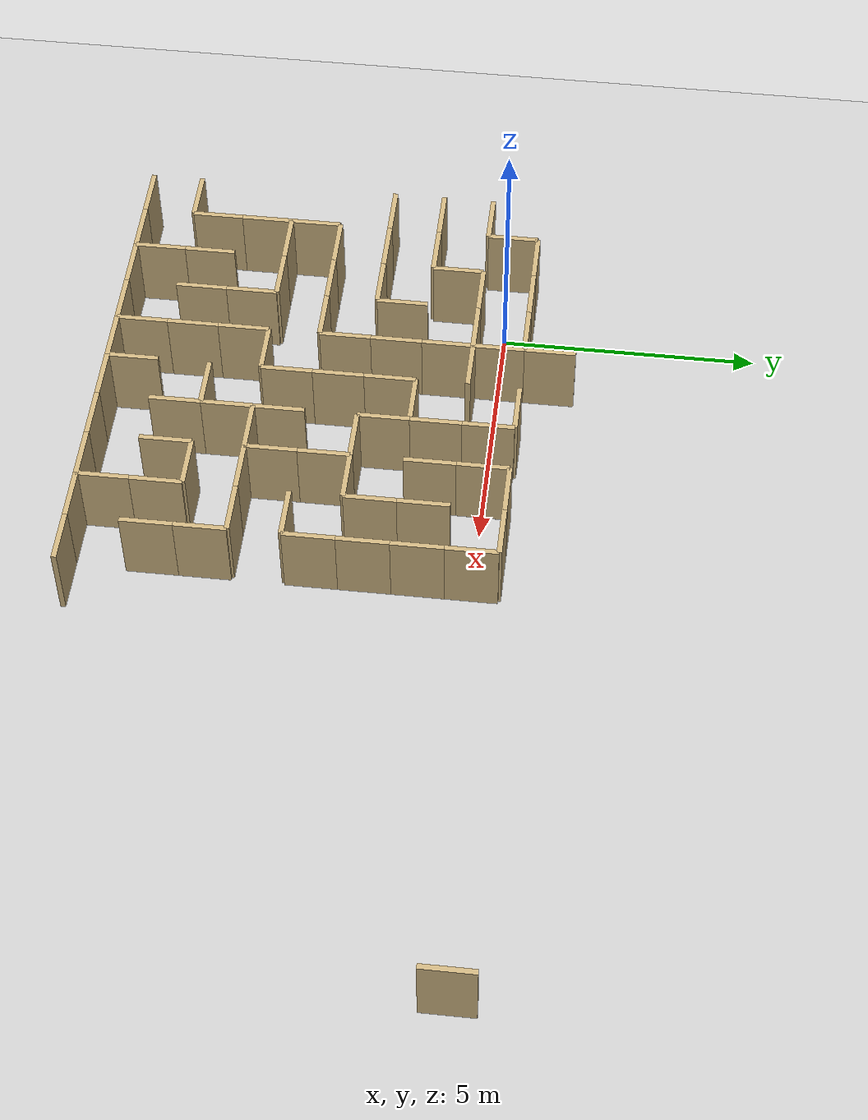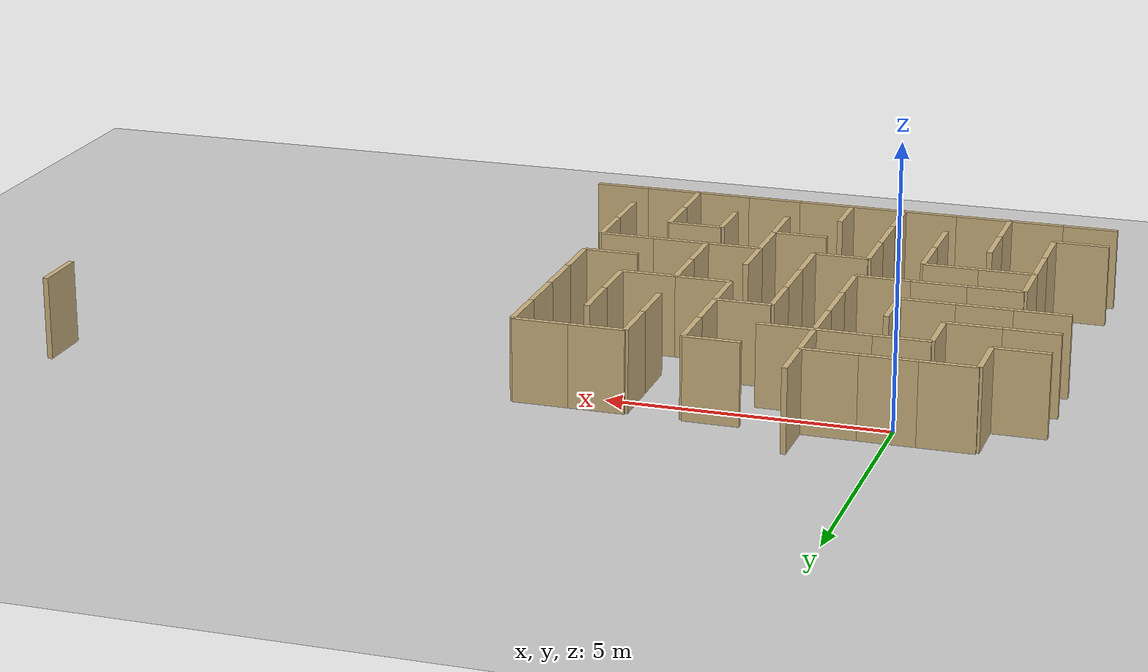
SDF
<sdf version="1.9">
 <world name="maze">
  <model name="ground_plane">
   <static>true</static>
   <link name="link">
    <collision name="collision">
     <geometry><plane><normal>0 0 1</normal><size>100 100</size></plane></geometry>
    </collision>
    <visual name="visual"><geometry><plane><normal>0 0 1</normal><size>100 100</size></plane></geometry></visual>
   </link>
  </model>
  <model name="wall_6">
   <static>true</static>
   <pose>-2.0 -7.5 0.75 0 0 0</pose>
   <link name="link">
    <collision name="collision"><geometry><box><size>1.0 0.1 1.5</size></box></geometry></collision>
    <visual name="visual">
     <geometry><box><size>1.0 0.1 1.5</size></box></geometry>
     <material>
      <ambient>0.8 0.7 0.5 1</ambient>
      <diffuse>0.8 0.7 0.5 1</diffuse>
      <specular>0.05 0.05 0.05 1</specular>
     </material>
    </visual>
   </link>
  </model>
  <model name="wall_7">
   <static>true</static>
   <pose>-1.0 -7.5 0.75 0 0 0</pose>
   <link name="link">
    <collision name="collision"><geometry><box><size>1.0 0.1 1.5</size></box></geometry></collision>
    <visual name="visual">
     <geometry><box><size>1.0 0.1 1.5</size></box></geometry>
     <material>
      <ambient>0.8 0.7 0.5 1</ambient>
      <diffuse>0.8 0.7 0.5 1</diffuse>
      <specular>0.05 0.05 0.05 1</specular>
     </material>
    </visual>
   </link>
  </model>
  <model name="wall_8">
   <static>true</static>
   <pose>0.0 -7.5 0.75 0 0 0</pose>
   <link name="link">
    <collision name="collision"><geometry><box><size>1.0 0.1 1.5</size></box></geometry></collision>
    <visual name="visual">
     <geometry><box><size>1.0 0.1 1.5</size></box></geometry>
     <material>
      <ambient>0.8 0.7 0.5 1</ambient>
      <diffuse>0.8 0.7 0.5 1</diffuse>
      <specular>0.05 0.05 0.05 1</specular>
     </material>
    </visual>
   </link>
  </model>
  <model name="wall_9">
   <static>true</static>
   <pose>-0.5 -7.0 0.75 0 0 0</pose>
   <link name="link">
    <collision name="collision"><geometry><box><size>0.1 1.0 1.5</size></box></geometry></collision>
    <visual name="visual">
     <geometry><box><size>0.1 1.0 1.5</size></box></geometry>
     <material>
      <ambient>0.8 0.7 0.5 1</ambient>
      <diffuse>0.8 0.7 0.5 1</diffuse>
      <specular>0.05 0.05 0.05 1</specular>
     </material>
    </visual>
   </link>
  </model>
  <model name="wall_10">
   <static>true</static>
   <pose>1.0 -7.5 0.75 0 0 0</pose>
   <link name="link">
    <collision name="collision"><geometry><box><size>1.0 0.1 1.5</size></box></geometry></collision>
    <visual name="visual">
     <geometry><box><size>1.0 0.1 1.5</size></box></geometry>
     <material>
      <ambient>0.8 0.7 0.5 1</ambient>
      <diffuse>0.8 0.7 0.5 1</diffuse>
      <specular>0.05 0.05 0.05 1</specular>
     </material>
    </visual>
   </link>
  </model>
  <model name="wall_11">
   <static>true</static>
   <pose>2.0 -7.5 0.75 0 0 0</pose>
   <link name="link">
    <collision name="collision"><geometry><box><size>1.0 0.1 1.5</size></box></geometry></collision>
    <visual name="visual">
     <geometry><box><size>1.0 0.1 1.5</size></box></geometry>
     <material>
      <ambient>0.8 0.7 0.5 1</ambient>
      <diffuse>0.8 0.7 0.5 1</diffuse>
      <specular>0.05 0.05 0.05 1</specular>
     </material>
    </visual>
   </link>
  </model>
  <model name="wall_12">
   <static>true</static>
   <pose>1.5 -7.0 0.75 0 0 0</pose>
   <link name="link">
    <collision name="collision"><geometry><box><size>0.1 1.0 1.5</size></box></geometry></collision>
    <visual name="visual">
     <geometry><box><size>0.1 1.0 1.5</size></box></geometry>
     <material>
      <ambient>0.8 0.7 0.5 1</ambient>
      <diffuse>0.8 0.7 0.5 1</diffuse>
      <specular>0.05 0.05 0.05 1</specular>
     </material>
    </visual>
   </link>
  </model>
  <model name="wall_13">
   <static>true</static>
   <pose>3.0 -7.5 0.75 0 0 0</pose>
   <link name="link">
    <collision name="collision"><geometry><box><size>1.0 0.1 1.5</size></box></geometry></collision>
    <visual name="visual">
     <geometry><box><size>1.0 0.1 1.5</size></box></geometry>
     <material>
      <ambient>0.8 0.7 0.5 1</ambient>
      <diffuse>0.8 0.7 0.5 1</diffuse>
      <specular>0.05 0.05 0.05 1</specular>
     </material>
    </visual>
   </link>
  </model>
  <model name="wall_14">
   <static>true</static>
   <pose>2.5 -7.0 0.75 0 0 0</pose>
   <link name="link">
    <collision name="collision"><geometry><box><size>0.1 1.0 1.5</size></box></geometry></collision>
    <visual name="visual">
     <geometry><box><size>0.1 1.0 1.5</size></box></geometry>
     <material>
      <ambient>0.8 0.7 0.5 1</ambient>
      <diffuse>0.8 0.7 0.5 1</diffuse>
      <specular>0.05 0.05 0.05 1</specular>
     </material>
    </visual>
   </link>
  </model>
  <model name="wall_15">
   <static>true</static>
   <pose>4.0 -7.5 0.75 0 0 0</pose>
   <link name="link">
    <collision name="collision"><geometry><box><size>1.0 0.1 1.5</size></box></geometry></collision>
    <visual name="visual">
     <geometry><box><size>1.0 0.1 1.5</size></box></geometry>
     <material>
      <ambient>0.8 0.7 0.5 1</ambient>
      <diffuse>0.8 0.7 0.5 1</diffuse>
      <specular>0.05 0.05 0.05 1</specular>
     </material>
    </visual>
   </link>
  </model>
  <model name="wall_16">
   <static>true</static>
   <pose>5.0 -7.5 0.75 0 0 0</pose>
   <link name="link">
    <collision name="collision"><geometry><box><size>1.0 0.1 1.5</size></box></geometry></collision>
    <visual name="visual">
     <geometry><box><size>1.0 0.1 1.5</size></box></geometry>
     <material>
      <ambient>0.8 0.7 0.5 1</ambient>
      <diffuse>0.8 0.7 0.5 1</diffuse>
      <specular>0.05 0.05 0.05 1</specular>
     </material>
    </visual>
   </link>
  </model>
  <model name="wall_17">
   <static>true</static>
   <pose>6.0 -7.5 0.75 0 0 0</pose>
   <link name="link">
    <collision name="collision"><geometry><box><size>1.0 0.1 1.5</size></box></geometry></collision>
    <visual name="visual">
     <geometry><box><size>1.0 0.1 1.5</size></box></geometry>
     <material>
      <ambient>0.8 0.7 0.5 1</ambient>
      <diffuse>0.8 0.7 0.5 1</diffuse>
      <specular>0.05 0.05 0.05 1</specular>
     </material>
    </visual>
   </link>
  </model>
  <model name="wall_18">
   <static>true</static>
   <pose>5.5 -7.0 0.75 0 0 0</pose>
   <link name="link">
    <collision name="collision"><geometry><box><size>0.1 1.0 1.5</size></box></geometry></collision>
    <visual name="visual">
     <geometry><box><size>0.1 1.0 1.5</size></box></geometry>
     <material>
      <ambient>0.8 0.7 0.5 1</ambient>
      <diffuse>0.8 0.7 0.5 1</diffuse>
      <specular>0.05 0.05 0.05 1</specular>
     </material>
    </visual>
   </link>
  </model>
  <model name="wall_19">
   <static>true</static>
   <pose>7.0 -7.5 0.75 0 0 0</pose>
   <link name="link">
    <collision name="collision"><geometry><box><size>1.0 0.1 1.5</size></box></geometry></collision>
    <visual name="visual">
     <geometry><box><size>1.0 0.1 1.5</size></box></geometry>
     <material>
      <ambient>0.8 0.7 0.5 1</ambient>
      <diffuse>0.8 0.7 0.5 1</diffuse>
      <specular>0.05 0.05 0.05 1</specular>
     </material>
    </visual>
   </link>
  </model>
  <model name="wall_26">
   <static>true</static>
   <pose>-2.0 -6.5 0.75 0 0 0</pose>
   <link name="link">
    <collision name="collision"><geometry><box><size>1.0 0.1 1.5</size></box></geometry></collision>
    <visual name="visual">
     <geometry><box><size>1.0 0.1 1.5</size></box></geometry>
     <material>
      <ambient>0.8 0.7 0.5 1</ambient>
      <diffuse>0.8 0.7 0.5 1</diffuse>
      <specular>0.05 0.05 0.05 1</specular>
     </material>
    </visual>
   </link>
  </model>
  <model name="wall_27">
   <static>true</static>
   <pose>-1.5 -6.0 0.75 0 0 0</pose>
   <link name="link">
    <collision name="collision"><geometry><box><size>0.1 1.0 1.5</size></box></geometry></collision>
    <visual name="visual">
     <geometry><box><size>0.1 1.0 1.5</size></box></geometry>
     <material>
      <ambient>0.8 0.7 0.5 1</ambient>
      <diffuse>0.8 0.7 0.5 1</diffuse>
      <specular>0.05 0.05 0.05 1</specular>
     </material>
    </visual>
   </link>
  </model>
  <model name="wall_28">
   <static>true</static>
   <pose>-0.5 -6.0 0.75 0 0 0</pose>
   <link name="link">
    <collision name="collision"><geometry><box><size>0.1 1.0 1.5</size></box></geometry></collision>
    <visual name="visual">
     <geometry><box><size>0.1 1.0 1.5</size></box></geometry>
     <material>
      <ambient>0.8 0.7 0.5 1</ambient>
      <diffuse>0.8 0.7 0.5 1</diffuse>
      <specular>0.05 0.05 0.05 1</specular>
     </material>
    </visual>
   </link>
  </model>
  <model name="wall_29">
   <static>true</static>
   <pose>0.5 -6.0 0.75 0 0 0</pose>
   <link name="link">
    <collision name="collision"><geometry><box><size>0.1 1.0 1.5</size></box></geometry></collision>
    <visual name="visual">
     <geometry><box><size>0.1 1.0 1.5</size></box></geometry>
     <material>
      <ambient>0.8 0.7 0.5 1</ambient>
      <diffuse>0.8 0.7 0.5 1</diffuse>
      <specular>0.05 0.05 0.05 1</specular>
     </material>
    </visual>
   </link>
  </model>
  <model name="wall_30">
   <static>true</static>
   <pose>1.5 -6.0 0.75 0 0 0</pose>
   <link name="link">
    <collision name="collision"><geometry><box><size>0.1 1.0 1.5</size></box></geometry></collision>
    <visual name="visual">
     <geometry><box><size>0.1 1.0 1.5</size></box></geometry>
     <material>
      <ambient>0.8 0.7 0.5 1</ambient>
      <diffuse>0.8 0.7 0.5 1</diffuse>
      <specular>0.05 0.05 0.05 1</specular>
     </material>
    </visual>
   </link>
  </model>
  <model name="wall_31">
   <static>true</static>
   <pose>3.5 -6.0 0.75 0 0 0</pose>
   <link name="link">
    <collision name="collision"><geometry><box><size>0.1 1.0 1.5</size></box></geometry></collision>
    <visual name="visual">
     <geometry><box><size>0.1 1.0 1.5</size></box></geometry>
     <material>
      <ambient>0.8 0.7 0.5 1</ambient>
      <diffuse>0.8 0.7 0.5 1</diffuse>
      <specular>0.05 0.05 0.05 1</specular>
     </material>
    </visual>
   </link>
  </model>
  <model name="wall_32">
   <static>true</static>
   <pose>4.5 -6.0 0.75 0 0 0</pose>
   <link name="link">
    <collision name="collision"><geometry><box><size>0.1 1.0 1.5</size></box></geometry></collision>
    <visual name="visual">
     <geometry><box><size>0.1 1.0 1.5</size></box></geometry>
     <material>
      <ambient>0.8 0.7 0.5 1</ambient>
      <diffuse>0.8 0.7 0.5 1</diffuse>
      <specular>0.05 0.05 0.05 1</specular>
     </material>
    </visual>
   </link>
  </model>
  <model name="wall_33">
   <static>true</static>
   <pose>5.5 -6.0 0.75 0 0 0</pose>
   <link name="link">
    <collision name="collision"><geometry><box><size>0.1 1.0 1.5</size></box></geometry></collision>
    <visual name="visual">
     <geometry><box><size>0.1 1.0 1.5</size></box></geometry>
     <material>
      <ambient>0.8 0.7 0.5 1</ambient>
      <diffuse>0.8 0.7 0.5 1</diffuse>
      <specular>0.05 0.05 0.05 1</specular>
     </material>
    </visual>
   </link>
  </model>
  <model name="wall_34">
   <static>true</static>
   <pose>6.5 -6.0 0.75 0 0 0</pose>
   <link name="link">
    <collision name="collision"><geometry><box><size>0.1 1.0 1.5</size></box></geometry></collision>
    <visual name="visual">
     <geometry><box><size>0.1 1.0 1.5</size></box></geometry>
     <material>
      <ambient>0.8 0.7 0.5 1</ambient>
      <diffuse>0.8 0.7 0.5 1</diffuse>
      <specular>0.05 0.05 0.05 1</specular>
     </material>
    </visual>
   </link>
  </model>
  <model name="wall_41">
   <static>true</static>
   <pose>-1.5 -5.0 0.75 0 0 0</pose>
   <link name="link">
    <collision name="collision"><geometry><box><size>0.1 1.0 1.5</size></box></geometry></collision>
    <visual name="visual">
     <geometry><box><size>0.1 1.0 1.5</size></box></geometry>
     <material>
      <ambient>0.8 0.7 0.5 1</ambient>
      <diffuse>0.8 0.7 0.5 1</diffuse>
      <specular>0.05 0.05 0.05 1</specular>
     </material>
    </visual>
   </link>
  </model>
  <model name="wall_42">
   <static>true</static>
   <pose>0.5 -5.0 0.75 0 0 0</pose>
   <link name="link">
    <collision name="collision"><geometry><box><size>0.1 1.0 1.5</size></box></geometry></collision>
    <visual name="visual">
     <geometry><box><size>0.1 1.0 1.5</size></box></geometry>
     <material>
      <ambient>0.8 0.7 0.5 1</ambient>
      <diffuse>0.8 0.7 0.5 1</diffuse>
      <specular>0.05 0.05 0.05 1</specular>
     </material>
    </visual>
   </link>
  </model>
  <model name="wall_43">
   <static>true</static>
   <pose>1.5 -5.0 0.75 0 0 0</pose>
   <link name="link">
    <collision name="collision"><geometry><box><size>0.1 1.0 1.5</size></box></geometry></collision>
    <visual name="visual">
     <geometry><box><size>0.1 1.0 1.5</size></box></geometry>
     <material>
      <ambient>0.8 0.7 0.5 1</ambient>
      <diffuse>0.8 0.7 0.5 1</diffuse>
      <specular>0.05 0.05 0.05 1</specular>
     </material>
    </visual>
   </link>
  </model>
  <model name="wall_44">
   <static>true</static>
   <pose>3.0 -5.5 0.75 0 0 0</pose>
   <link name="link">
    <collision name="collision"><geometry><box><size>1.0 0.1 1.5</size></box></geometry></collision>
    <visual name="visual">
     <geometry><box><size>1.0 0.1 1.5</size></box></geometry>
     <material>
      <ambient>0.8 0.7 0.5 1</ambient>
      <diffuse>0.8 0.7 0.5 1</diffuse>
      <specular>0.05 0.05 0.05 1</specular>
     </material>
    </visual>
   </link>
  </model>
  <model name="wall_45">
   <static>true</static>
   <pose>3.5 -5.0 0.75 0 0 0</pose>
   <link name="link">
    <collision name="collision"><geometry><box><size>0.1 1.0 1.5</size></box></geometry></collision>
    <visual name="visual">
     <geometry><box><size>0.1 1.0 1.5</size></box></geometry>
     <material>
      <ambient>0.8 0.7 0.5 1</ambient>
      <diffuse>0.8 0.7 0.5 1</diffuse>
      <specular>0.05 0.05 0.05 1</specular>
     </material>
    </visual>
   </link>
  </model>
  <model name="wall_46">
   <static>true</static>
   <pose>5.0 -5.5 0.75 0 0 0</pose>
   <link name="link">
    <collision name="collision"><geometry><box><size>1.0 0.1 1.5</size></box></geometry></collision>
    <visual name="visual">
     <geometry><box><size>1.0 0.1 1.5</size></box></geometry>
     <material>
      <ambient>0.8 0.7 0.5 1</ambient>
      <diffuse>0.8 0.7 0.5 1</diffuse>
      <specular>0.05 0.05 0.05 1</specular>
     </material>
    </visual>
   </link>
  </model>
  <model name="wall_47">
   <static>true</static>
   <pose>6.5 -5.0 0.75 0 0 0</pose>
   <link name="link">
    <collision name="collision"><geometry><box><size>0.1 1.0 1.5</size></box></geometry></collision>
    <visual name="visual">
     <geometry><box><size>0.1 1.0 1.5</size></box></geometry>
     <material>
      <ambient>0.8 0.7 0.5 1</ambient>
      <diffuse>0.8 0.7 0.5 1</diffuse>
      <specular>0.05 0.05 0.05 1</specular>
     </material>
    </visual>
   </link>
  </model>
  <model name="wall_54">
   <static>true</static>
   <pose>-1.0 -4.5 0.75 0 0 0</pose>
   <link name="link">
    <collision name="collision"><geometry><box><size>1.0 0.1 1.5</size></box></geometry></collision>
    <visual name="visual">
     <geometry><box><size>1.0 0.1 1.5</size></box></geometry>
     <material>
      <ambient>0.8 0.7 0.5 1</ambient>
      <diffuse>0.8 0.7 0.5 1</diffuse>
      <specular>0.05 0.05 0.05 1</specular>
     </material>
    </visual>
   </link>
  </model>
  <model name="wall_55">
   <static>true</static>
   <pose>-1.5 -4.0 0.75 0 0 0</pose>
   <link name="link">
    <collision name="collision"><geometry><box><size>0.1 1.0 1.5</size></box></geometry></collision>
    <visual name="visual">
     <geometry><box><size>0.1 1.0 1.5</size></box></geometry>
     <material>
      <ambient>0.8 0.7 0.5 1</ambient>
      <diffuse>0.8 0.7 0.5 1</diffuse>
      <specular>0.05 0.05 0.05 1</specular>
     </material>
    </visual>
   </link>
  </model>
  <model name="wall_56">
   <static>true</static>
   <pose>0.0 -4.5 0.75 0 0 0</pose>
   <link name="link">
    <collision name="collision"><geometry><box><size>1.0 0.1 1.5</size></box></geometry></collision>
    <visual name="visual">
     <geometry><box><size>1.0 0.1 1.5</size></box></geometry>
     <material>
      <ambient>0.8 0.7 0.5 1</ambient>
      <diffuse>0.8 0.7 0.5 1</diffuse>
      <specular>0.05 0.05 0.05 1</specular>
     </material>
    </visual>
   </link>
  </model>
  <model name="wall_57">
   <static>true</static>
   <pose>2.0 -4.5 0.75 0 0 0</pose>
   <link name="link">
    <collision name="collision"><geometry><box><size>1.0 0.1 1.5</size></box></geometry></collision>
    <visual name="visual">
     <geometry><box><size>1.0 0.1 1.5</size></box></geometry>
     <material>
      <ambient>0.8 0.7 0.5 1</ambient>
      <diffuse>0.8 0.7 0.5 1</diffuse>
      <specular>0.05 0.05 0.05 1</specular>
     </material>
    </visual>
   </link>
  </model>
  <model name="wall_58">
   <static>true</static>
   <pose>2.5 -4.0 0.75 0 0 0</pose>
   <link name="link">
    <collision name="collision"><geometry><box><size>0.1 1.0 1.5</size></box></geometry></collision>
    <visual name="visual">
     <geometry><box><size>0.1 1.0 1.5</size></box></geometry>
     <material>
      <ambient>0.8 0.7 0.5 1</ambient>
      <diffuse>0.8 0.7 0.5 1</diffuse>
      <specular>0.05 0.05 0.05 1</specular>
     </material>
    </visual>
   </link>
  </model>
  <model name="wall_59">
   <static>true</static>
   <pose>4.0 -4.5 0.75 0 0 0</pose>
   <link name="link">
    <collision name="collision"><geometry><box><size>1.0 0.1 1.5</size></box></geometry></collision>
    <visual name="visual">
     <geometry><box><size>1.0 0.1 1.5</size></box></geometry>
     <material>
      <ambient>0.8 0.7 0.5 1</ambient>
      <diffuse>0.8 0.7 0.5 1</diffuse>
      <specular>0.05 0.05 0.05 1</specular>
     </material>
    </visual>
   </link>
  </model>
  <model name="wall_60">
   <static>true</static>
   <pose>3.5 -4.0 0.75 0 0 0</pose>
   <link name="link">
    <collision name="collision"><geometry><box><size>0.1 1.0 1.5</size></box></geometry></collision>
    <visual name="visual">
     <geometry><box><size>0.1 1.0 1.5</size></box></geometry>
     <material>
      <ambient>0.8 0.7 0.5 1</ambient>
      <diffuse>0.8 0.7 0.5 1</diffuse>
      <specular>0.05 0.05 0.05 1</specular>
     </material>
    </visual>
   </link>
  </model>
  <model name="wall_61">
   <static>true</static>
   <pose>5.0 -4.5 0.75 0 0 0</pose>
   <link name="link">
    <collision name="collision"><geometry><box><size>1.0 0.1 1.5</size></box></geometry></collision>
    <visual name="visual">
     <geometry><box><size>1.0 0.1 1.5</size></box></geometry>
     <material>
      <ambient>0.8 0.7 0.5 1</ambient>
      <diffuse>0.8 0.7 0.5 1</diffuse>
      <specular>0.05 0.05 0.05 1</specular>
     </material>
    </visual>
   </link>
  </model>
  <model name="wall_62">
   <static>true</static>
   <pose>4.5 -4.0 0.75 0 0 0</pose>
   <link name="link">
    <collision name="collision"><geometry><box><size>0.1 1.0 1.5</size></box></geometry></collision>
    <visual name="visual">
     <geometry><box><size>0.1 1.0 1.5</size></box></geometry>
     <material>
      <ambient>0.8 0.7 0.5 1</ambient>
      <diffuse>0.8 0.7 0.5 1</diffuse>
      <specular>0.05 0.05 0.05 1</specular>
     </material>
    </visual>
   </link>
  </model>
  <model name="wall_63">
   <static>true</static>
   <pose>6.0 -4.5 0.75 0 0 0</pose>
   <link name="link">
    <collision name="collision"><geometry><box><size>1.0 0.1 1.5</size></box></geometry></collision>
    <visual name="visual">
     <geometry><box><size>1.0 0.1 1.5</size></box></geometry>
     <material>
      <ambient>0.8 0.7 0.5 1</ambient>
      <diffuse>0.8 0.7 0.5 1</diffuse>
      <specular>0.05 0.05 0.05 1</specular>
     </material>
    </visual>
   </link>
  </model>
  <model name="wall_70">
   <static>true</static>
   <pose>-1.0 -3.5 0.75 0 0 0</pose>
   <link name="link">
    <collision name="collision"><geometry><box><size>1.0 0.1 1.5</size></box></geometry></collision>
    <visual name="visual">
     <geometry><box><size>1.0 0.1 1.5</size></box></geometry>
     <material>
      <ambient>0.8 0.7 0.5 1</ambient>
      <diffuse>0.8 0.7 0.5 1</diffuse>
      <specular>0.05 0.05 0.05 1</specular>
     </material>
    </visual>
   </link>
  </model>
  <model name="wall_71">
   <static>true</static>
   <pose>0.0 -3.5 0.75 0 0 0</pose>
   <link name="link">
    <collision name="collision"><geometry><box><size>1.0 0.1 1.5</size></box></geometry></collision>
    <visual name="visual">
     <geometry><box><size>1.0 0.1 1.5</size></box></geometry>
     <material>
      <ambient>0.8 0.7 0.5 1</ambient>
      <diffuse>0.8 0.7 0.5 1</diffuse>
      <specular>0.05 0.05 0.05 1</specular>
     </material>
    </visual>
   </link>
  </model>
  <model name="wall_72">
   <static>true</static>
   <pose>1.0 -3.5 0.75 0 0 0</pose>
   <link name="link">
    <collision name="collision"><geometry><box><size>1.0 0.1 1.5</size></box></geometry></collision>
    <visual name="visual">
     <geometry><box><size>1.0 0.1 1.5</size></box></geometry>
     <material>
      <ambient>0.8 0.7 0.5 1</ambient>
      <diffuse>0.8 0.7 0.5 1</diffuse>
      <specular>0.05 0.05 0.05 1</specular>
     </material>
    </visual>
   </link>
  </model>
  <model name="wall_73">
   <static>true</static>
   <pose>1.5 -3.0 0.75 0 0 0</pose>
   <link name="link">
    <collision name="collision"><geometry><box><size>0.1 1.0 1.5</size></box></geometry></collision>
    <visual name="visual">
     <geometry><box><size>0.1 1.0 1.5</size></box></geometry>
     <material>
      <ambient>0.8 0.7 0.5 1</ambient>
      <diffuse>0.8 0.7 0.5 1</diffuse>
      <specular>0.05 0.05 0.05 1</specular>
     </material>
    </visual>
   </link>
  </model>
  <model name="wall_74">
   <static>true</static>
   <pose>2.5 -3.0 0.75 0 0 0</pose>
   <link name="link">
    <collision name="collision"><geometry><box><size>0.1 1.0 1.5</size></box></geometry></collision>
    <visual name="visual">
     <geometry><box><size>0.1 1.0 1.5</size></box></geometry>
     <material>
      <ambient>0.8 0.7 0.5 1</ambient>
      <diffuse>0.8 0.7 0.5 1</diffuse>
      <specular>0.05 0.05 0.05 1</specular>
     </material>
    </visual>
   </link>
  </model>
  <model name="wall_75">
   <static>true</static>
   <pose>4.5 -3.0 0.75 0 0 0</pose>
   <link name="link">
    <collision name="collision"><geometry><box><size>0.1 1.0 1.5</size></box></geometry></collision>
    <visual name="visual">
     <geometry><box><size>0.1 1.0 1.5</size></box></geometry>
     <material>
      <ambient>0.8 0.7 0.5 1</ambient>
      <diffuse>0.8 0.7 0.5 1</diffuse>
      <specular>0.05 0.05 0.05 1</specular>
     </material>
    </visual>
   </link>
  </model>
  <model name="wall_76">
   <static>true</static>
   <pose>6.0 -3.5 0.75 0 0 0</pose>
   <link name="link">
    <collision name="collision"><geometry><box><size>1.0 0.1 1.5</size></box></geometry></collision>
    <visual name="visual">
     <geometry><box><size>1.0 0.1 1.5</size></box></geometry>
     <material>
      <ambient>0.8 0.7 0.5 1</ambient>
      <diffuse>0.8 0.7 0.5 1</diffuse>
      <specular>0.05 0.05 0.05 1</specular>
     </material>
    </visual>
   </link>
  </model>
  <model name="wall_77">
   <static>true</static>
   <pose>6.5 -3.0 0.75 0 0 0</pose>
   <link name="link">
    <collision name="collision"><geometry><box><size>0.1 1.0 1.5</size></box></geometry></collision>
    <visual name="visual">
     <geometry><box><size>0.1 1.0 1.5</size></box></geometry>
     <material>
      <ambient>0.8 0.7 0.5 1</ambient>
      <diffuse>0.8 0.7 0.5 1</diffuse>
      <specular>0.05 0.05 0.05 1</specular>
     </material>
    </visual>
   </link>
  </model>
  <model name="wall_83">
   <static>true</static>
   <pose>-2.0 -2.5 0.75 0 0 0</pose>
   <link name="link">
    <collision name="collision"><geometry><box><size>1.0 0.1 1.5</size></box></geometry></collision>
    <visual name="visual">
     <geometry><box><size>1.0 0.1 1.5</size></box></geometry>
     <material>
      <ambient>0.8 0.7 0.5 1</ambient>
      <diffuse>0.8 0.7 0.5 1</diffuse>
      <specular>0.05 0.05 0.05 1</specular>
     </material>
    </visual>
   </link>
  </model>
  <model name="wall_84">
   <static>true</static>
   <pose>-1.0 -2.5 0.75 0 0 0</pose>
   <link name="link">
    <collision name="collision"><geometry><box><size>1.0 0.1 1.5</size></box></geometry></collision>
    <visual name="visual">
     <geometry><box><size>1.0 0.1 1.5</size></box></geometry>
     <material>
      <ambient>0.8 0.7 0.5 1</ambient>
      <diffuse>0.8 0.7 0.5 1</diffuse>
      <specular>0.05 0.05 0.05 1</specular>
     </material>
    </visual>
   </link>
  </model>
  <model name="wall_85">
   <static>true</static>
   <pose>0.0 -2.5 0.75 0 0 0</pose>
   <link name="link">
    <collision name="collision"><geometry><box><size>1.0 0.1 1.5</size></box></geometry></collision>
    <visual name="visual">
     <geometry><box><size>1.0 0.1 1.5</size></box></geometry>
     <material>
      <ambient>0.8 0.7 0.5 1</ambient>
      <diffuse>0.8 0.7 0.5 1</diffuse>
      <specular>0.05 0.05 0.05 1</specular>
     </material>
    </visual>
   </link>
  </model>
  <model name="wall_86">
   <static>true</static>
   <pose>0.5 -2.0 0.75 0 0 0</pose>
   <link name="link">
    <collision name="collision"><geometry><box><size>0.1 1.0 1.5</size></box></geometry></collision>
    <visual name="visual">
     <geometry><box><size>0.1 1.0 1.5</size></box></geometry>
     <material>
      <ambient>0.8 0.7 0.5 1</ambient>
      <diffuse>0.8 0.7 0.5 1</diffuse>
      <specular>0.05 0.05 0.05 1</specular>
     </material>
    </visual>
   </link>
  </model>
  <model name="wall_87">
   <static>true</static>
   <pose>1.5 -2.0 0.75 0 0 0</pose>
   <link name="link">
    <collision name="collision"><geometry><box><size>0.1 1.0 1.5</size></box></geometry></collision>
    <visual name="visual">
     <geometry><box><size>0.1 1.0 1.5</size></box></geometry>
     <material>
      <ambient>0.8 0.7 0.5 1</ambient>
      <diffuse>0.8 0.7 0.5 1</diffuse>
      <specular>0.05 0.05 0.05 1</specular>
     </material>
    </visual>
   </link>
  </model>
  <model name="wall_88">
   <static>true</static>
   <pose>2.5 -2.0 0.75 0 0 0</pose>
   <link name="link">
    <collision name="collision"><geometry><box><size>0.1 1.0 1.5</size></box></geometry></collision>
    <visual name="visual">
     <geometry><box><size>0.1 1.0 1.5</size></box></geometry>
     <material>
      <ambient>0.8 0.7 0.5 1</ambient>
      <diffuse>0.8 0.7 0.5 1</diffuse>
      <specular>0.05 0.05 0.05 1</specular>
     </material>
    </visual>
   </link>
  </model>
  <model name="wall_89">
   <static>true</static>
   <pose>4.0 -2.5 0.75 0 0 0</pose>
   <link name="link">
    <collision name="collision"><geometry><box><size>1.0 0.1 1.5</size></box></geometry></collision>
    <visual name="visual">
     <geometry><box><size>1.0 0.1 1.5</size></box></geometry>
     <material>
      <ambient>0.8 0.7 0.5 1</ambient>
      <diffuse>0.8 0.7 0.5 1</diffuse>
      <specular>0.05 0.05 0.05 1</specular>
     </material>
    </visual>
   </link>
  </model>
  <model name="wall_90">
   <static>true</static>
   <pose>3.5 -2.0 0.75 0 0 0</pose>
   <link name="link">
    <collision name="collision"><geometry><box><size>0.1 1.0 1.5</size></box></geometry></collision>
    <visual name="visual">
     <geometry><box><size>0.1 1.0 1.5</size></box></geometry>
     <material>
      <ambient>0.8 0.7 0.5 1</ambient>
      <diffuse>0.8 0.7 0.5 1</diffuse>
      <specular>0.05 0.05 0.05 1</specular>
     </material>
    </visual>
   </link>
  </model>
  <model name="wall_91">
   <static>true</static>
   <pose>5.0 -2.5 0.75 0 0 0</pose>
   <link name="link">
    <collision name="collision"><geometry><box><size>1.0 0.1 1.5</size></box></geometry></collision>
    <visual name="visual">
     <geometry><box><size>1.0 0.1 1.5</size></box></geometry>
     <material>
      <ambient>0.8 0.7 0.5 1</ambient>
      <diffuse>0.8 0.7 0.5 1</diffuse>
      <specular>0.05 0.05 0.05 1</specular>
     </material>
    </visual>
   </link>
  </model>
  <model name="wall_92">
   <static>true</static>
   <pose>5.5 -2.0 0.75 0 0 0</pose>
   <link name="link">
    <collision name="collision"><geometry><box><size>0.1 1.0 1.5</size></box></geometry></collision>
    <visual name="visual">
     <geometry><box><size>0.1 1.0 1.5</size></box></geometry>
     <material>
      <ambient>0.8 0.7 0.5 1</ambient>
      <diffuse>0.8 0.7 0.5 1</diffuse>
      <specular>0.05 0.05 0.05 1</specular>
     </material>
    </visual>
   </link>
  </model>
  <model name="wall_93">
   <static>true</static>
   <pose>6.5 -2.0 0.75 0 0 0</pose>
   <link name="link">
    <collision name="collision"><geometry><box><size>0.1 1.0 1.5</size></box></geometry></collision>
    <visual name="visual">
     <geometry><box><size>0.1 1.0 1.5</size></box></geometry>
     <material>
      <ambient>0.8 0.7 0.5 1</ambient>
      <diffuse>0.8 0.7 0.5 1</diffuse>
      <specular>0.05 0.05 0.05 1</specular>
     </material>
    </visual>
   </link>
  </model>
  <model name="wall_99">
   <static>true</static>
   <pose>-2.0 -1.5 0.75 0 0 0</pose>
   <link name="link">
    <collision name="collision"><geometry><box><size>1.0 0.1 1.5</size></box></geometry></collision>
    <visual name="visual">
     <geometry><box><size>1.0 0.1 1.5</size></box></geometry>
     <material>
      <ambient>0.8 0.7 0.5 1</ambient>
      <diffuse>0.8 0.7 0.5 1</diffuse>
      <specular>0.05 0.05 0.05 1</specular>
     </material>
    </visual>
   </link>
  </model>
  <model name="wall_100">
   <static>true</static>
   <pose>-1.0 -1.5 0.75 0 0 0</pose>
   <link name="link">
    <collision name="collision"><geometry><box><size>1.0 0.1 1.5</size></box></geometry></collision>
    <visual name="visual">
     <geometry><box><size>1.0 0.1 1.5</size></box></geometry>
     <material>
      <ambient>0.8 0.7 0.5 1</ambient>
      <diffuse>0.8 0.7 0.5 1</diffuse>
      <specular>0.05 0.05 0.05 1</specular>
     </material>
    </visual>
   </link>
  </model>
  <model name="wall_101">
   <static>true</static>
   <pose>-0.5 -1.0 0.75 0 0 0</pose>
   <link name="link">
    <collision name="collision"><geometry><box><size>0.1 1.0 1.5</size></box></geometry></collision>
    <visual name="visual">
     <geometry><box><size>0.1 1.0 1.5</size></box></geometry>
     <material>
      <ambient>0.8 0.7 0.5 1</ambient>
      <diffuse>0.8 0.7 0.5 1</diffuse>
      <specular>0.05 0.05 0.05 1</specular>
     </material>
    </visual>
   </link>
  </model>
  <model name="wall_102">
   <static>true</static>
   <pose>1.5 -1.0 0.75 0 0 0</pose>
   <link name="link">
    <collision name="collision"><geometry><box><size>0.1 1.0 1.5</size></box></geometry></collision>
    <visual name="visual">
     <geometry><box><size>0.1 1.0 1.5</size></box></geometry>
     <material>
      <ambient>0.8 0.7 0.5 1</ambient>
      <diffuse>0.8 0.7 0.5 1</diffuse>
      <specular>0.05 0.05 0.05 1</specular>
     </material>
    </visual>
   </link>
  </model>
  <model name="wall_103">
   <static>true</static>
   <pose>3.0 -1.5 0.75 0 0 0</pose>
   <link name="link">
    <collision name="collision"><geometry><box><size>1.0 0.1 1.5</size></box></geometry></collision>
    <visual name="visual">
     <geometry><box><size>1.0 0.1 1.5</size></box></geometry>
     <material>
      <ambient>0.8 0.7 0.5 1</ambient>
      <diffuse>0.8 0.7 0.5 1</diffuse>
      <specular>0.05 0.05 0.05 1</specular>
     </material>
    </visual>
   </link>
  </model>
  <model name="wall_104">
   <static>true</static>
   <pose>3.5 -1.0 0.75 0 0 0</pose>
   <link name="link">
    <collision name="collision"><geometry><box><size>0.1 1.0 1.5</size></box></geometry></collision>
    <visual name="visual">
     <geometry><box><size>0.1 1.0 1.5</size></box></geometry>
     <material>
      <ambient>0.8 0.7 0.5 1</ambient>
      <diffuse>0.8 0.7 0.5 1</diffuse>
      <specular>0.05 0.05 0.05 1</specular>
     </material>
    </visual>
   </link>
  </model>
  <model name="wall_105">
   <static>true</static>
   <pose>4.5 -1.0 0.75 0 0 0</pose>
   <link name="link">
    <collision name="collision"><geometry><box><size>0.1 1.0 1.5</size></box></geometry></collision>
    <visual name="visual">
     <geometry><box><size>0.1 1.0 1.5</size></box></geometry>
     <material>
      <ambient>0.8 0.7 0.5 1</ambient>
      <diffuse>0.8 0.7 0.5 1</diffuse>
      <specular>0.05 0.05 0.05 1</specular>
     </material>
    </visual>
   </link>
  </model>
  <model name="wall_106">
   <static>true</static>
   <pose>5.5 -1.0 0.75 0 0 0</pose>
   <link name="link">
    <collision name="collision"><geometry><box><size>0.1 1.0 1.5</size></box></geometry></collision>
    <visual name="visual">
     <geometry><box><size>0.1 1.0 1.5</size></box></geometry>
     <material>
      <ambient>0.8 0.7 0.5 1</ambient>
      <diffuse>0.8 0.7 0.5 1</diffuse>
      <specular>0.05 0.05 0.05 1</specular>
     </material>
    </visual>
   </link>
  </model>
  <model name="wall_107">
   <static>true</static>
   <pose>6.5 -1.0 0.75 0 0 0</pose>
   <link name="link">
    <collision name="collision"><geometry><box><size>0.1 1.0 1.5</size></box></geometry></collision>
    <visual name="visual">
     <geometry><box><size>0.1 1.0 1.5</size></box></geometry>
     <material>
      <ambient>0.8 0.7 0.5 1</ambient>
      <diffuse>0.8 0.7 0.5 1</diffuse>
      <specular>0.05 0.05 0.05 1</specular>
     </material>
    </visual>
   </link>
  </model>
  <model name="wall_115">
   <static>true</static>
   <pose>-2.0 -0.5 0.75 0 0 0</pose>
   <link name="link">
    <collision name="collision"><geometry><box><size>1.0 0.1 1.5</size></box></geometry></collision>
    <visual name="visual">
     <geometry><box><size>1.0 0.1 1.5</size></box></geometry>
     <material>
      <ambient>0.8 0.7 0.5 1</ambient>
      <diffuse>0.8 0.7 0.5 1</diffuse>
      <specular>0.05 0.05 0.05 1</specular>
     </material>
    </visual>
   </link>
  </model>
  <model name="wall_116">
   <static>true</static>
   <pose>-1.5 0.0 0.75 0 0 0</pose>
   <link name="link">
    <collision name="collision"><geometry><box><size>0.1 1.0 1.5</size></box></geometry></collision>
    <visual name="visual">
     <geometry><box><size>0.1 1.0 1.5</size></box></geometry>
     <material>
      <ambient>0.8 0.7 0.5 1</ambient>
      <diffuse>0.8 0.7 0.5 1</diffuse>
      <specular>0.05 0.05 0.05 1</specular>
     </material>
    </visual>
   </link>
  </model>
  <model name="wall_117">
   <static>true</static>
   <pose>0.0 -0.5 0.75 0 0 0</pose>
   <link name="link">
    <collision name="collision"><geometry><box><size>1.0 0.1 1.5</size></box></geometry></collision>
    <visual name="visual">
     <geometry><box><size>1.0 0.1 1.5</size></box></geometry>
     <material>
      <ambient>0.8 0.7 0.5 1</ambient>
      <diffuse>0.8 0.7 0.5 1</diffuse>
      <specular>0.05 0.05 0.05 1</specular>
     </material>
    </visual>
   </link>
  </model>
  <model name="wall_118">
   <static>true</static>
   <pose>1.0 -0.5 0.75 0 0 0</pose>
   <link name="link">
    <collision name="collision"><geometry><box><size>1.0 0.1 1.5</size></box></geometry></collision>
    <visual name="visual">
     <geometry><box><size>1.0 0.1 1.5</size></box></geometry>
     <material>
      <ambient>0.8 0.7 0.5 1</ambient>
      <diffuse>0.8 0.7 0.5 1</diffuse>
      <specular>0.05 0.05 0.05 1</specular>
     </material>
    </visual>
   </link>
  </model>
  <model name="wall_119">
   <static>true</static>
   <pose>2.0 -0.5 0.75 0 0 0</pose>
   <link name="link">
    <collision name="collision"><geometry><box><size>1.0 0.1 1.5</size></box></geometry></collision>
    <visual name="visual">
     <geometry><box><size>1.0 0.1 1.5</size></box></geometry>
     <material>
      <ambient>0.8 0.7 0.5 1</ambient>
      <diffuse>0.8 0.7 0.5 1</diffuse>
      <specular>0.05 0.05 0.05 1</specular>
     </material>
    </visual>
   </link>
  </model>
  <model name="wall_120">
   <static>true</static>
   <pose>1.5 0.0 0.75 0 0 0</pose>
   <link name="link">
    <collision name="collision"><geometry><box><size>0.1 1.0 1.5</size></box></geometry></collision>
    <visual name="visual">
     <geometry><box><size>0.1 1.0 1.5</size></box></geometry>
     <material>
      <ambient>0.8 0.7 0.5 1</ambient>
      <diffuse>0.8 0.7 0.5 1</diffuse>
      <specular>0.05 0.05 0.05 1</specular>
     </material>
    </visual>
   </link>
  </model>
  <model name="wall_121">
   <static>true</static>
   <pose>3.5 0.0 0.75 0 0 0</pose>
   <link name="link">
    <collision name="collision"><geometry><box><size>0.1 1.0 1.5</size></box></geometry></collision>
    <visual name="visual">
     <geometry><box><size>0.1 1.0 1.5</size></box></geometry>
     <material>
      <ambient>0.8 0.7 0.5 1</ambient>
      <diffuse>0.8 0.7 0.5 1</diffuse>
      <specular>0.05 0.05 0.05 1</specular>
     </material>
    </visual>
   </link>
  </model>
  <model name="wall_122">
   <static>true</static>
   <pose>4.5 0.0 0.75 0 0 0</pose>
   <link name="link">
    <collision name="collision"><geometry><box><size>0.1 1.0 1.5</size></box></geometry></collision>
    <visual name="visual">
     <geometry><box><size>0.1 1.0 1.5</size></box></geometry>
     <material>
      <ambient>0.8 0.7 0.5 1</ambient>
      <diffuse>0.8 0.7 0.5 1</diffuse>
      <specular>0.05 0.05 0.05 1</specular>
     </material>
    </visual>
   </link>
  </model>
  <model name="wall_123">
   <static>true</static>
   <pose>6.5 0.0 0.75 0 0 0</pose>
   <link name="link">
    <collision name="collision"><geometry><box><size>0.1 1.0 1.5</size></box></geometry></collision>
    <visual name="visual">
     <geometry><box><size>0.1 1.0 1.5</size></box></geometry>
     <material>
      <ambient>0.8 0.7 0.5 1</ambient>
      <diffuse>0.8 0.7 0.5 1</diffuse>
      <specular>0.05 0.05 0.05 1</specular>
     </material>
    </visual>
   </link>
  </model>
  <model name="wall_129">
   <static>true</static>
   <pose>-1.0 0.5 0.75 0 0 0</pose>
   <link name="link">
    <collision name="collision"><geometry><box><size>1.0 0.1 1.5</size></box></geometry></collision>
    <visual name="visual">
     <geometry><box><size>1.0 0.1 1.5</size></box></geometry>
     <material>
      <ambient>0.8 0.7 0.5 1</ambient>
      <diffuse>0.8 0.7 0.5 1</diffuse>
      <specular>0.05 0.05 0.05 1</specular>
     </material>
    </visual>
   </link>
  </model>
  <model name="wall_130">
   <static>true</static>
   <pose>0.0 0.5 0.75 0 0 0</pose>
   <link name="link">
    <collision name="collision"><geometry><box><size>1.0 0.1 1.5</size></box></geometry></collision>
    <visual name="visual">
     <geometry><box><size>1.0 0.1 1.5</size></box></geometry>
     <material>
      <ambient>0.8 0.7 0.5 1</ambient>
      <diffuse>0.8 0.7 0.5 1</diffuse>
      <specular>0.05 0.05 0.05 1</specular>
     </material>
    </visual>
   </link>
  </model>
  <model name="wall_131">
   <static>true</static>
   <pose>1.0 0.5 0.75 0 0 0</pose>
   <link name="link">
    <collision name="collision"><geometry><box><size>1.0 0.1 1.5</size></box></geometry></collision>
    <visual name="visual">
     <geometry><box><size>1.0 0.1 1.5</size></box></geometry>
     <material>
      <ambient>0.8 0.7 0.5 1</ambient>
      <diffuse>0.8 0.7 0.5 1</diffuse>
      <specular>0.05 0.05 0.05 1</specular>
     </material>
    </visual>
   </link>
  </model>
  <model name="wall_132">
   <static>true</static>
   <pose>1.5 1.0 0.75 0 0 0</pose>
   <link name="link">
    <collision name="collision"><geometry><box><size>0.1 1.0 1.5</size></box></geometry></collision>
    <visual name="visual">
     <geometry><box><size>0.1 1.0 1.5</size></box></geometry>
     <material>
      <ambient>0.8 0.7 0.5 1</ambient>
      <diffuse>0.8 0.7 0.5 1</diffuse>
      <specular>0.05 0.05 0.05 1</specular>
     </material>
    </visual>
   </link>
  </model>
  <model name="wall_133">
   <static>true</static>
   <pose>3.0 0.5 0.75 0 0 0</pose>
   <link name="link">
    <collision name="collision"><geometry><box><size>1.0 0.1 1.5</size></box></geometry></collision>
    <visual name="visual">
     <geometry><box><size>1.0 0.1 1.5</size></box></geometry>
     <material>
      <ambient>0.8 0.7 0.5 1</ambient>
      <diffuse>0.8 0.7 0.5 1</diffuse>
      <specular>0.05 0.05 0.05 1</specular>
     </material>
    </visual>
   </link>
  </model>
  <model name="wall_135">
   <static>true</static>
   <pose>5.0 0.5 0.75 0 0 0</pose>
   <link name="link">
    <collision name="collision"><geometry><box><size>1.0 0.1 1.5</size></box></geometry></collision>
    <visual name="visual">
     <geometry><box><size>1.0 0.1 1.5</size></box></geometry>
     <material>
      <ambient>0.8 0.7 0.5 1</ambient>
      <diffuse>0.8 0.7 0.5 1</diffuse>
      <specular>0.05 0.05 0.05 1</specular>
     </material>
    </visual>
   </link>
  </model>
  <model name="wall_137">
   <static>true</static>
   <pose>6.0 0.5 0.75 0 0 0</pose>
   <link name="link">
    <collision name="collision"><geometry><box><size>1.0 0.1 1.5</size></box></geometry></collision>
    <visual name="visual">
     <geometry><box><size>1.0 0.1 1.5</size></box></geometry>
     <material>
      <ambient>0.8 0.7 0.5 1</ambient>
      <diffuse>0.8 0.7 0.5 1</diffuse>
      <specular>0.05 0.05 0.05 1</specular>
     </material>
    </visual>
   </link>
  </model>
  <model name="wall_225">
   <static>true</static>
   <pose>15 0.5 0.75 0 0 0</pose>
   <link name="link">
    <collision name="collision"><geometry><box><size>0.1 1.0 1.5</size></box></geometry></collision>
    <visual name="visual">
     <geometry><box><size>0.1 1.0 1.5</size></box></geometry>
     <material>
      <ambient>0.8 0.7 0.5 1</ambient>
      <diffuse>0.8 0.7 0.5 1</diffuse>
      <specular>0.05 0.05 0.05 1</specular>
     </material>
    </visual>
   </link>
  </model>
 </world>
</sdf>
